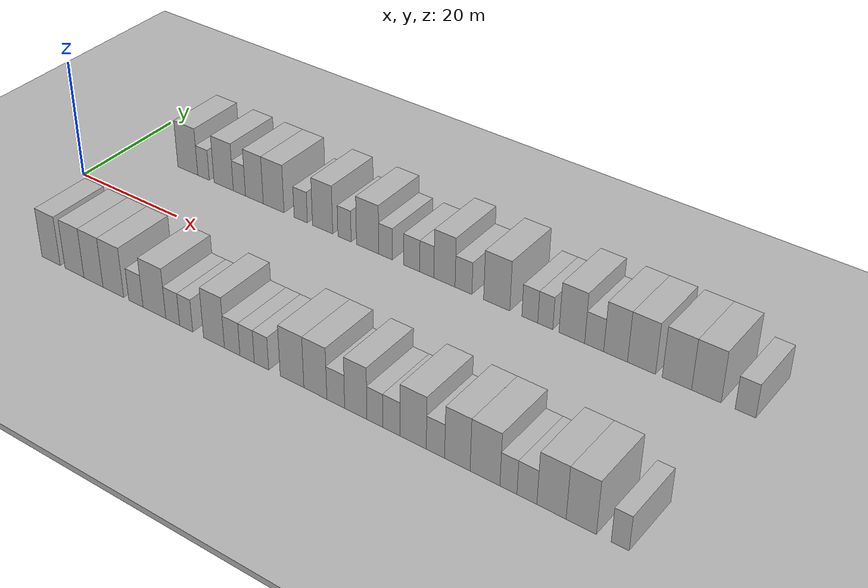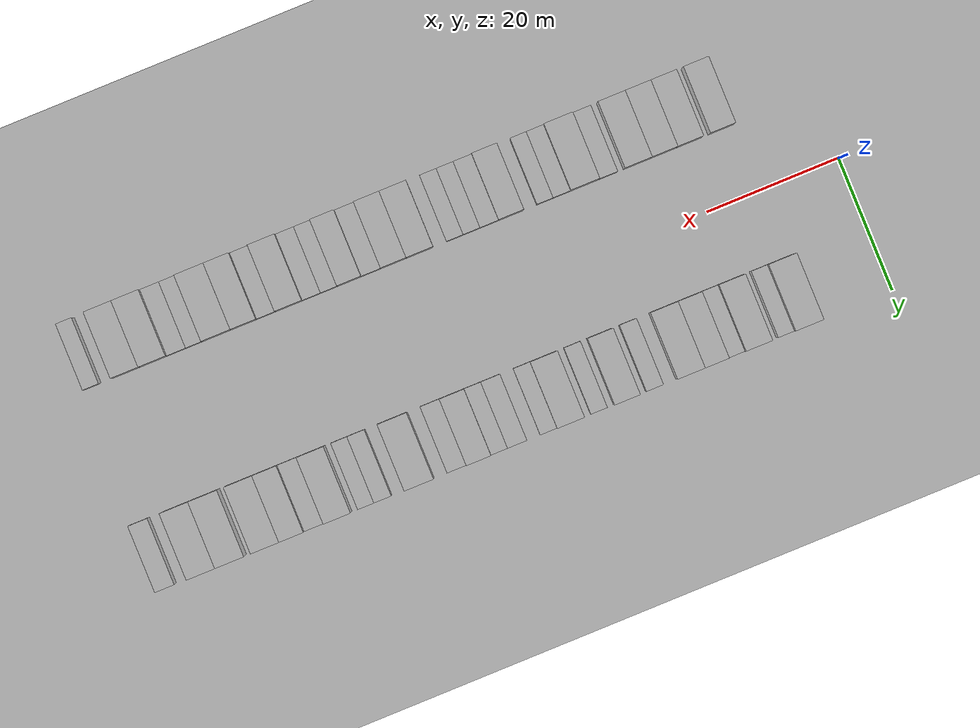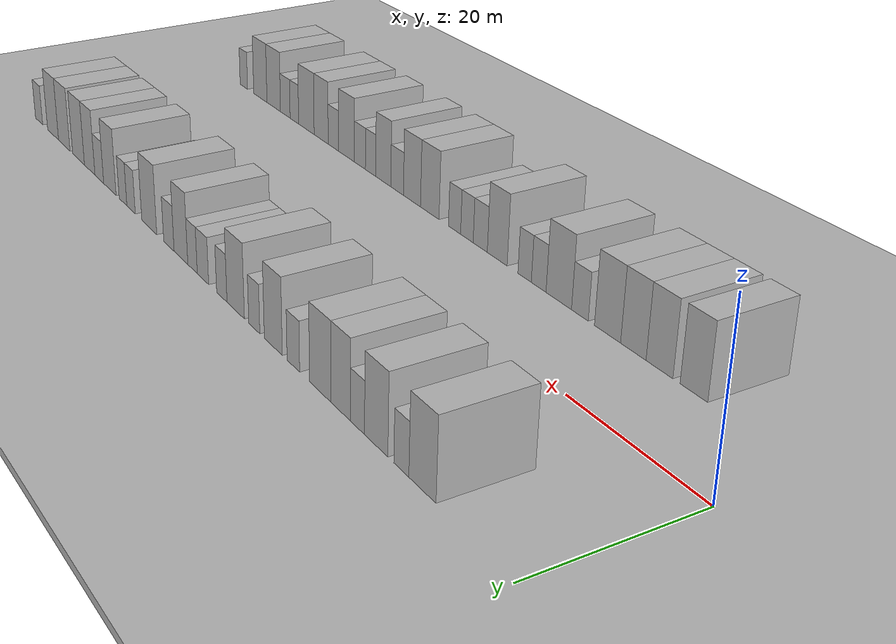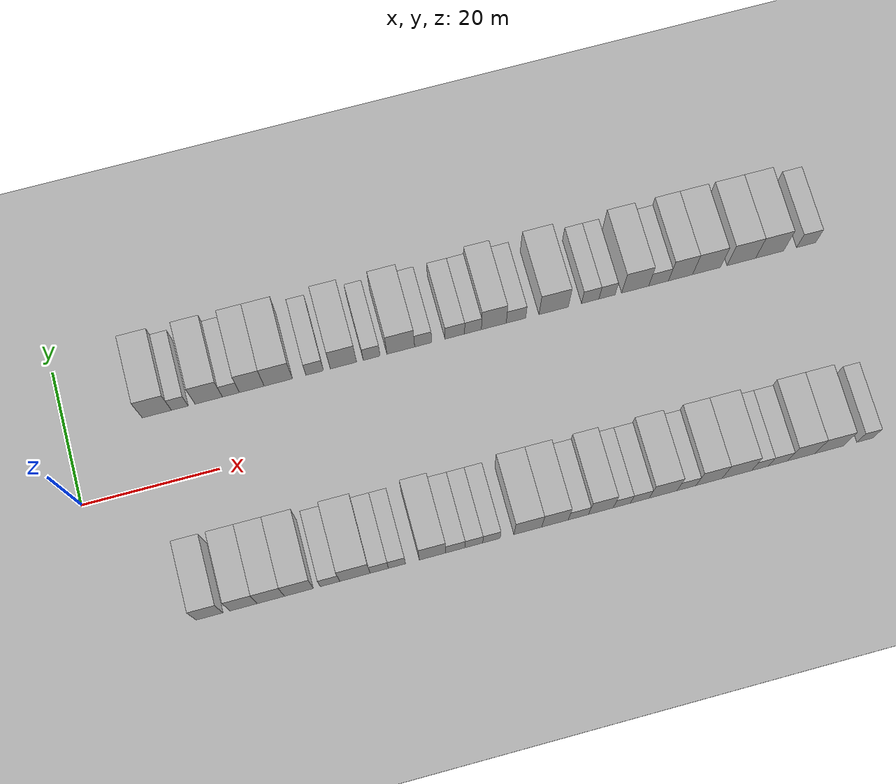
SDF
<sdf version="1.6">
 <world name="default">
  <include><name>ground_plane_1</name><uri>model://HANNAS_ground_plane</uri></include>
  <include>
   <name>ground_plane_2</name>
   <uri>model://HANNAS_ground_plane</uri>
   <pose>100 0 0  0 0 0</pose>
  </include>
  <model name="building_1">
   <static>1</static>
   <pose>13.1305 15.0000 0 0.000000 0.000000 1.570796</pose>
   <link name="link">
    <pose>0 0 4.50 0 0 0</pose>
    <collision name="collision"><geometry><box><size>10.0000 4.2610 9.0000</size></box></geometry></collision>
    <visual name="visual">
     <cast_shadows>0</cast_shadows>
     <geometry><box><size>10.0000 4.2610 9.0000</size></box></geometry>
     <material>
      <script>
       <uri>model://HANNAS_wall/materials/scripts</uri>
       <uri>model://HANNAS_wall/materials/textures</uri>
       <name>vrc/HANNAS_wall</name>
      </script>
     </material>
    </visual>
   </link>
  </model>
  <model name="building_2">
   <static>1</static>
   <pose>16.4832 15.0000 0 0.000000 0.000000 1.570796</pose>
   <link name="link">
    <pose>0 0 3.00 0 0 0</pose>
    <collision name="collision"><geometry><box><size>10.0000 2.4443 6.0000</size></box></geometry></collision>
    <visual name="visual">
     <cast_shadows>0</cast_shadows>
     <geometry><box><size>10.0000 2.4443 6.0000</size></box></geometry>
     <material>
      <script>
       <uri>model://HANNAS_wall/materials/scripts</uri>
       <uri>model://HANNAS_wall/materials/textures</uri>
       <name>vrc/HANNAS_wall</name>
      </script>
     </material>
    </visual>
   </link>
  </model>
  <model name="building_3">
   <static>1</static>
   <pose>20.7164 15.0000 0 0.000000 0.000000 1.570796</pose>
   <link name="link">
    <pose>0 0 4.50 0 0 0</pose>
    <collision name="collision"><geometry><box><size>10.0000 4.0220 9.0000</size></box></geometry></collision>
    <visual name="visual">
     <cast_shadows>0</cast_shadows>
     <geometry><box><size>10.0000 4.0220 9.0000</size></box></geometry>
     <material>
      <script>
       <uri>model://HANNAS_wall/materials/scripts</uri>
       <uri>model://HANNAS_wall/materials/textures</uri>
       <name>vrc/HANNAS_wall</name>
      </script>
     </material>
    </visual>
   </link>
  </model>
  <model name="building_4">
   <static>1</static>
   <pose>23.9780 15.0000 0 0.000000 0.000000 1.570796</pose>
   <link name="link">
    <pose>0 0 3.00 0 0 0</pose>
    <collision name="collision"><geometry><box><size>10.0000 2.5012 6.0000</size></box></geometry></collision>
    <visual name="visual">
     <cast_shadows>0</cast_shadows>
     <geometry><box><size>10.0000 2.5012 6.0000</size></box></geometry>
     <material>
      <script>
       <uri>model://HANNAS_wall/materials/scripts</uri>
       <uri>model://HANNAS_wall/materials/textures</uri>
       <name>vrc/HANNAS_wall</name>
      </script>
     </material>
    </visual>
   </link>
  </model>
  <model name="building_5">
   <static>1</static>
   <pose>27.0393 15.0000 0 0.000000 0.000000 1.570796</pose>
   <link name="link">
    <pose>0 0 4.50 0 0 0</pose>
    <collision name="collision"><geometry><box><size>10.0000 3.6214 9.0000</size></box></geometry></collision>
    <visual name="visual">
     <cast_shadows>0</cast_shadows>
     <geometry><box><size>10.0000 3.6214 9.0000</size></box></geometry>
     <material>
      <script>
       <uri>model://HANNAS_wall/materials/scripts</uri>
       <uri>model://HANNAS_wall/materials/textures</uri>
       <name>vrc/HANNAS_wall</name>
      </script>
     </material>
    </visual>
   </link>
  </model>
  <model name="building_6">
   <static>1</static>
   <pose>30.9318 15.0000 0 0.000000 0.000000 1.570796</pose>
   <link name="link">
    <pose>0 0 4.50 0 0 0</pose>
    <collision name="collision"><geometry><box><size>10.0000 4.1634 9.0000</size></box></geometry></collision>
    <visual name="visual">
     <cast_shadows>0</cast_shadows>
     <geometry><box><size>10.0000 4.1634 9.0000</size></box></geometry>
     <material>
      <script>
       <uri>model://HANNAS_wall/materials/scripts</uri>
       <uri>model://HANNAS_wall/materials/textures</uri>
       <name>vrc/HANNAS_wall</name>
      </script>
     </material>
    </visual>
   </link>
  </model>
  <model name="building_7">
   <static>1</static>
   <pose>36.3098 15.0000 0 0.000000 0.000000 1.570796</pose>
   <link name="link">
    <pose>0 0 3.00 0 0 0</pose>
    <collision name="collision"><geometry><box><size>10.0000 2.5927 6.0000</size></box></geometry></collision>
    <visual name="visual">
     <cast_shadows>0</cast_shadows>
     <geometry><box><size>10.0000 2.5927 6.0000</size></box></geometry>
     <material>
      <script>
       <uri>model://HANNAS_wall/materials/scripts</uri>
       <uri>model://HANNAS_wall/materials/textures</uri>
       <name>vrc/HANNAS_wall</name>
      </script>
     </material>
    </visual>
   </link>
  </model>
  <model name="building_8">
   <static>1</static>
   <pose>40.5476 15.0000 0 0.000000 0.000000 1.570796</pose>
   <link name="link">
    <pose>0 0 4.50 0 0 0</pose>
    <collision name="collision"><geometry><box><size>10.0000 3.8829 9.0000</size></box></geometry></collision>
    <visual name="visual">
     <cast_shadows>0</cast_shadows>
     <geometry><box><size>10.0000 3.8829 9.0000</size></box></geometry>
     <material>
      <script>
       <uri>model://HANNAS_wall/materials/scripts</uri>
       <uri>model://HANNAS_wall/materials/textures</uri>
       <name>vrc/HANNAS_wall</name>
      </script>
     </material>
    </visual>
   </link>
  </model>
  <model name="building_9">
   <static>1</static>
   <pose>44.7395 15.0000 0 0.000000 0.000000 1.570796</pose>
   <link name="link">
    <pose>0 0 3.00 0 0 0</pose>
    <collision name="collision"><geometry><box><size>10.0000 2.5008 6.0000</size></box></geometry></collision>
    <visual name="visual">
     <cast_shadows>0</cast_shadows>
     <geometry><box><size>10.0000 2.5008 6.0000</size></box></geometry>
     <material>
      <script>
       <uri>model://HANNAS_wall/materials/scripts</uri>
       <uri>model://HANNAS_wall/materials/textures</uri>
       <name>vrc/HANNAS_wall</name>
      </script>
     </material>
    </visual>
   </link>
  </model>
  <model name="building_10">
   <static>1</static>
   <pose>49.0521 15.0000 0 0.000000 0.000000 1.570796</pose>
   <link name="link">
    <pose>0 0 4.50 0 0 0</pose>
    <collision name="collision"><geometry><box><size>10.0000 4.1243 9.0000</size></box></geometry></collision>
    <visual name="visual">
     <cast_shadows>0</cast_shadows>
     <geometry><box><size>10.0000 4.1243 9.0000</size></box></geometry>
     <material>
      <script>
       <uri>model://HANNAS_wall/materials/scripts</uri>
       <uri>model://HANNAS_wall/materials/textures</uri>
       <name>vrc/HANNAS_wall</name>
      </script>
     </material>
    </visual>
   </link>
  </model>
  <model name="building_11">
   <static>1</static>
   <pose>52.3806 15.0000 0 0.000000 0.000000 1.570796</pose>
   <link name="link">
    <pose>0 0 3.00 0 0 0</pose>
    <collision name="collision"><geometry><box><size>10.0000 2.5327 6.0000</size></box></geometry></collision>
    <visual name="visual">
     <cast_shadows>0</cast_shadows>
     <geometry><box><size>10.0000 2.5327 6.0000</size></box></geometry>
     <material>
      <script>
       <uri>model://HANNAS_wall/materials/scripts</uri>
       <uri>model://HANNAS_wall/materials/textures</uri>
       <name>vrc/HANNAS_wall</name>
      </script>
     </material>
    </visual>
   </link>
  </model>
  <model name="building_12">
   <static>1</static>
   <pose>57.1099 15.0000 0 0.000000 0.000000 1.570796</pose>
   <link name="link">
    <pose>0 0 3.00 0 0 0</pose>
    <collision name="collision"><geometry><box><size>10.0000 2.9259 6.0000</size></box></geometry></collision>
    <visual name="visual">
     <cast_shadows>0</cast_shadows>
     <geometry><box><size>10.0000 2.9259 6.0000</size></box></geometry>
     <material>
      <script>
       <uri>model://HANNAS_wall/materials/scripts</uri>
       <uri>model://HANNAS_wall/materials/textures</uri>
       <name>vrc/HANNAS_wall</name>
      </script>
     </material>
    </visual>
   </link>
  </model>
  <model name="building_13">
   <static>1</static>
   <pose>59.8237 15.0000 0 0.000000 0.000000 1.570796</pose>
   <link name="link">
    <pose>0 0 3.00 0 0 0</pose>
    <collision name="collision"><geometry><box><size>10.0000 2.5016 6.0000</size></box></geometry></collision>
    <visual name="visual">
     <cast_shadows>0</cast_shadows>
     <geometry><box><size>10.0000 2.5016 6.0000</size></box></geometry>
     <material>
      <script>
       <uri>model://HANNAS_wall/materials/scripts</uri>
       <uri>model://HANNAS_wall/materials/textures</uri>
       <name>vrc/HANNAS_wall</name>
      </script>
     </material>
    </visual>
   </link>
  </model>
  <model name="building_14">
   <static>1</static>
   <pose>62.9377 15.0000 0 0.000000 0.000000 1.570796</pose>
   <link name="link">
    <pose>0 0 4.50 0 0 0</pose>
    <collision name="collision"><geometry><box><size>10.0000 3.7264 9.0000</size></box></geometry></collision>
    <visual name="visual">
     <cast_shadows>0</cast_shadows>
     <geometry><box><size>10.0000 3.7264 9.0000</size></box></geometry>
     <material>
      <script>
       <uri>model://HANNAS_wall/materials/scripts</uri>
       <uri>model://HANNAS_wall/materials/textures</uri>
       <name>vrc/HANNAS_wall</name>
      </script>
     </material>
    </visual>
   </link>
  </model>
  <model name="building_15">
   <static>1</static>
   <pose>66.2591 15.0000 0 0.000000 0.000000 1.570796</pose>
   <link name="link">
    <pose>0 0 3.00 0 0 0</pose>
    <collision name="collision"><geometry><box><size>10.0000 2.9166 6.0000</size></box></geometry></collision>
    <visual name="visual">
     <cast_shadows>0</cast_shadows>
     <geometry><box><size>10.0000 2.9166 6.0000</size></box></geometry>
     <material>
      <script>
       <uri>model://HANNAS_wall/materials/scripts</uri>
       <uri>model://HANNAS_wall/materials/textures</uri>
       <name>vrc/HANNAS_wall</name>
      </script>
     </material>
    </visual>
   </link>
  </model>
  <model name="building_16">
   <static>1</static>
   <pose>71.9295 15.0000 0 0.000000 0.000000 1.570796</pose>
   <link name="link">
    <pose>0 0 4.50 0 0 0</pose>
    <collision name="collision"><geometry><box><size>10.0000 4.4241 9.0000</size></box></geometry></collision>
    <visual name="visual">
     <cast_shadows>0</cast_shadows>
     <geometry><box><size>10.0000 4.4241 9.0000</size></box></geometry>
     <material>
      <script>
       <uri>model://HANNAS_wall/materials/scripts</uri>
       <uri>model://HANNAS_wall/materials/textures</uri>
       <name>vrc/HANNAS_wall</name>
      </script>
     </material>
    </visual>
   </link>
  </model>
  <model name="building_17">
   <static>1</static>
   <pose>77.4528 15.0000 0 0.000000 0.000000 1.570796</pose>
   <link name="link">
    <pose>0 0 3.00 0 0 0</pose>
    <collision name="collision"><geometry><box><size>10.0000 2.6226 6.0000</size></box></geometry></collision>
    <visual name="visual">
     <cast_shadows>0</cast_shadows>
     <geometry><box><size>10.0000 2.6226 6.0000</size></box></geometry>
     <material>
      <script>
       <uri>model://HANNAS_wall/materials/scripts</uri>
       <uri>model://HANNAS_wall/materials/textures</uri>
       <name>vrc/HANNAS_wall</name>
      </script>
     </material>
    </visual>
   </link>
  </model>
  <model name="building_18">
   <static>1</static>
   <pose>79.9871 15.0000 0 0.000000 0.000000 1.570796</pose>
   <link name="link">
    <pose>0 0 3.00 0 0 0</pose>
    <collision name="collision"><geometry><box><size>10.0000 2.4461 6.0000</size></box></geometry></collision>
    <visual name="visual">
     <cast_shadows>0</cast_shadows>
     <geometry><box><size>10.0000 2.4461 6.0000</size></box></geometry>
     <material>
      <script>
       <uri>model://HANNAS_wall/materials/scripts</uri>
       <uri>model://HANNAS_wall/materials/textures</uri>
       <name>vrc/HANNAS_wall</name>
      </script>
     </material>
    </visual>
   </link>
  </model>
  <model name="building_19">
   <static>1</static>
   <pose>84.2621 15.0000 0 0.000000 0.000000 1.570796</pose>
   <link name="link">
    <pose>0 0 4.50 0 0 0</pose>
    <collision name="collision"><geometry><box><size>10.0000 4.1038 9.0000</size></box></geometry></collision>
    <visual name="visual">
     <cast_shadows>0</cast_shadows>
     <geometry><box><size>10.0000 4.1038 9.0000</size></box></geometry>
     <material>
      <script>
       <uri>model://HANNAS_wall/materials/scripts</uri>
       <uri>model://HANNAS_wall/materials/textures</uri>
       <name>vrc/HANNAS_wall</name>
      </script>
     </material>
    </visual>
   </link>
  </model>
  <model name="building_20">
   <static>1</static>
   <pose>87.8092 15.0000 0 0.000000 0.000000 1.570796</pose>
   <link name="link">
    <pose>0 0 3.00 0 0 0</pose>
    <collision name="collision"><geometry><box><size>10.0000 2.9904 6.0000</size></box></geometry></collision>
    <visual name="visual">
     <cast_shadows>0</cast_shadows>
     <geometry><box><size>10.0000 2.9904 6.0000</size></box></geometry>
     <material>
      <script>
       <uri>model://HANNAS_wall/materials/scripts</uri>
       <uri>model://HANNAS_wall/materials/textures</uri>
       <name>vrc/HANNAS_wall</name>
      </script>
     </material>
    </visual>
   </link>
  </model>
  <model name="building_21">
   <static>1</static>
   <pose>91.1462 15.0000 0 0.000000 0.000000 1.570796</pose>
   <link name="link">
    <pose>0 0 4.50 0 0 0</pose>
    <collision name="collision"><geometry><box><size>10.0000 3.6837 9.0000</size></box></geometry></collision>
    <visual name="visual">
     <cast_shadows>0</cast_shadows>
     <geometry><box><size>10.0000 3.6837 9.0000</size></box></geometry>
     <material>
      <script>
       <uri>model://HANNAS_wall/materials/scripts</uri>
       <uri>model://HANNAS_wall/materials/textures</uri>
       <name>vrc/HANNAS_wall</name>
      </script>
     </material>
    </visual>
   </link>
  </model>
  <model name="building_22">
   <static>1</static>
   <pose>95.1196 15.0000 0 0.000000 0.000000 1.570796</pose>
   <link name="link">
    <pose>0 0 4.50 0 0 0</pose>
    <collision name="collision"><geometry><box><size>10.0000 4.2631 9.0000</size></box></geometry></collision>
    <visual name="visual">
     <cast_shadows>0</cast_shadows>
     <geometry><box><size>10.0000 4.2631 9.0000</size></box></geometry>
     <material>
      <script>
       <uri>model://HANNAS_wall/materials/scripts</uri>
       <uri>model://HANNAS_wall/materials/textures</uri>
       <name>vrc/HANNAS_wall</name>
      </script>
     </material>
    </visual>
   </link>
  </model>
  <model name="building_23">
   <static>1</static>
   <pose>100.4330 15.0000 0 0.000000 0.000000 1.570796</pose>
   <link name="link">
    <pose>0 0 4.50 0 0 0</pose>
    <collision name="collision"><geometry><box><size>10.0000 4.3636 9.0000</size></box></geometry></collision>
    <visual name="visual">
     <cast_shadows>0</cast_shadows>
     <geometry><box><size>10.0000 4.3636 9.0000</size></box></geometry>
     <material>
      <script>
       <uri>model://HANNAS_wall/materials/scripts</uri>
       <uri>model://HANNAS_wall/materials/textures</uri>
       <name>vrc/HANNAS_wall</name>
      </script>
     </material>
    </visual>
   </link>
  </model>
  <model name="building_24">
   <static>1</static>
   <pose>104.7611 15.0000 0 0.000000 0.000000 1.570796</pose>
   <link name="link">
    <pose>0 0 4.50 0 0 0</pose>
    <collision name="collision"><geometry><box><size>10.0000 4.2925 9.0000</size></box></geometry></collision>
    <visual name="visual">
     <cast_shadows>0</cast_shadows>
     <geometry><box><size>10.0000 4.2925 9.0000</size></box></geometry>
     <material>
      <script>
       <uri>model://HANNAS_wall/materials/scripts</uri>
       <uri>model://HANNAS_wall/materials/textures</uri>
       <name>vrc/HANNAS_wall</name>
      </script>
     </material>
    </visual>
   </link>
  </model>
  <model name="building_25">
   <static>1</static>
   <pose>110.3749 15.0000 0 0.000000 0.000000 1.570796</pose>
   <link name="link">
    <pose>0 0 3.00 0 0 0</pose>
    <collision name="collision"><geometry><box><size>10.0000 2.9353 6.0000</size></box></geometry></collision>
    <visual name="visual">
     <cast_shadows>0</cast_shadows>
     <geometry><box><size>10.0000 2.9353 6.0000</size></box></geometry>
     <material>
      <script>
       <uri>model://HANNAS_wall/materials/scripts</uri>
       <uri>model://HANNAS_wall/materials/textures</uri>
       <name>vrc/HANNAS_wall</name>
      </script>
     </material>
    </visual>
   </link>
  </model>
  <model name="building_52">
   <static>1</static>
   <pose>13.9039 -15.0000 0 0.000000 0.000000 1.570796</pose>
   <link name="link">
    <pose>0 0 4.50 0 0 0</pose>
    <collision name="collision"><geometry><box><size>10.0000 3.8078 9.0000</size></box></geometry></collision>
    <visual name="visual">
     <cast_shadows>0</cast_shadows>
     <geometry><box><size>10.0000 3.8078 9.0000</size></box></geometry>
     <material>
      <script>
       <uri>model://HANNAS_wall/materials/scripts</uri>
       <uri>model://HANNAS_wall/materials/textures</uri>
       <name>vrc/HANNAS_wall</name>
      </script>
     </material>
    </visual>
   </link>
  </model>
  <model name="building_53">
   <static>1</static>
   <pose>18.7515 -15.0000 0 0.000000 0.000000 1.570796</pose>
   <link name="link">
    <pose>0 0 4.50 0 0 0</pose>
    <collision name="collision"><geometry><box><size>10.0000 3.8874 9.0000</size></box></geometry></collision>
    <visual name="visual">
     <cast_shadows>0</cast_shadows>
     <geometry><box><size>10.0000 3.8874 9.0000</size></box></geometry>
     <material>
      <script>
       <uri>model://HANNAS_wall/materials/scripts</uri>
       <uri>model://HANNAS_wall/materials/textures</uri>
       <name>vrc/HANNAS_wall</name>
      </script>
     </material>
    </visual>
   </link>
  </model>
  <model name="building_54">
   <static>1</static>
   <pose>22.6195 -15.0000 0 0.000000 0.000000 1.570796</pose>
   <link name="link">
    <pose>0 0 4.50 0 0 0</pose>
    <collision name="collision"><geometry><box><size>10.0000 3.8486 9.0000</size></box></geometry></collision>
    <visual name="visual">
     <cast_shadows>0</cast_shadows>
     <geometry><box><size>10.0000 3.8486 9.0000</size></box></geometry>
     <material>
      <script>
       <uri>model://HANNAS_wall/materials/scripts</uri>
       <uri>model://HANNAS_wall/materials/textures</uri>
       <name>vrc/HANNAS_wall</name>
      </script>
     </material>
    </visual>
   </link>
  </model>
  <model name="building_55">
   <static>1</static>
   <pose>26.6039 -15.0000 0 0.000000 0.000000 1.570796</pose>
   <link name="link">
    <pose>0 0 4.50 0 0 0</pose>
    <collision name="collision"><geometry><box><size>10.0000 4.1202 9.0000</size></box></geometry></collision>
    <visual name="visual">
     <cast_shadows>0</cast_shadows>
     <geometry><box><size>10.0000 4.1202 9.0000</size></box></geometry>
     <material>
      <script>
       <uri>model://HANNAS_wall/materials/scripts</uri>
       <uri>model://HANNAS_wall/materials/textures</uri>
       <name>vrc/HANNAS_wall</name>
      </script>
     </material>
    </visual>
   </link>
  </model>
  <model name="building_56">
   <static>1</static>
   <pose>31.0491 -15.0000 0 0.000000 0.000000 1.570796</pose>
   <link name="link">
    <pose>0 0 3.00 0 0 0</pose>
    <collision name="collision"><geometry><box><size>10.0000 2.7703 6.0000</size></box></geometry></collision>
    <visual name="visual">
     <cast_shadows>0</cast_shadows>
     <geometry><box><size>10.0000 2.7703 6.0000</size></box></geometry>
     <material>
      <script>
       <uri>model://HANNAS_wall/materials/scripts</uri>
       <uri>model://HANNAS_wall/materials/textures</uri>
       <name>vrc/HANNAS_wall</name>
      </script>
     </material>
    </visual>
   </link>
  </model>
  <model name="building_57">
   <static>1</static>
   <pose>34.6202 -15.0000 0 0.000000 0.000000 1.570796</pose>
   <link name="link">
    <pose>0 0 4.50 0 0 0</pose>
    <collision name="collision"><geometry><box><size>10.0000 4.3719 9.0000</size></box></geometry></collision>
    <visual name="visual">
     <cast_shadows>0</cast_shadows>
     <geometry><box><size>10.0000 4.3719 9.0000</size></box></geometry>
     <material>
      <script>
       <uri>model://HANNAS_wall/materials/scripts</uri>
       <uri>model://HANNAS_wall/materials/textures</uri>
       <name>vrc/HANNAS_wall</name>
      </script>
     </material>
    </visual>
   </link>
  </model>
  <model name="building_58">
   <static>1</static>
   <pose>38.1164 -15.0000 0 0.000000 0.000000 1.570796</pose>
   <link name="link">
    <pose>0 0 3.00 0 0 0</pose>
    <collision name="collision"><geometry><box><size>10.0000 2.6204 6.0000</size></box></geometry></collision>
    <visual name="visual">
     <cast_shadows>0</cast_shadows>
     <geometry><box><size>10.0000 2.6204 6.0000</size></box></geometry>
     <material>
      <script>
       <uri>model://HANNAS_wall/materials/scripts</uri>
       <uri>model://HANNAS_wall/materials/textures</uri>
       <name>vrc/HANNAS_wall</name>
      </script>
     </material>
    </visual>
   </link>
  </model>
  <model name="building_59">
   <static>1</static>
   <pose>40.6482 -15.0000 0 0.000000 0.000000 1.570796</pose>
   <link name="link">
    <pose>0 0 3.00 0 0 0</pose>
    <collision name="collision"><geometry><box><size>10.0000 2.4431 6.0000</size></box></geometry></collision>
    <visual name="visual">
     <cast_shadows>0</cast_shadows>
     <geometry><box><size>10.0000 2.4431 6.0000</size></box></geometry>
     <material>
      <script>
       <uri>model://HANNAS_wall/materials/scripts</uri>
       <uri>model://HANNAS_wall/materials/textures</uri>
       <name>vrc/HANNAS_wall</name>
      </script>
     </material>
    </visual>
   </link>
  </model>
  <model name="building_60">
   <static>1</static>
   <pose>45.7719 -15.0000 0 0.000000 0.000000 1.570796</pose>
   <link name="link">
    <pose>0 0 4.50 0 0 0</pose>
    <collision name="collision"><geometry><box><size>10.0000 3.8043 9.0000</size></box></geometry></collision>
    <visual name="visual">
     <cast_shadows>0</cast_shadows>
     <geometry><box><size>10.0000 3.8043 9.0000</size></box></geometry>
     <material>
      <script>
       <uri>model://HANNAS_wall/materials/scripts</uri>
       <uri>model://HANNAS_wall/materials/textures</uri>
       <name>vrc/HANNAS_wall</name>
      </script>
     </material>
    </visual>
   </link>
  </model>
  <model name="building_61">
   <static>1</static>
   <pose>49.0729 -15.0000 0 0.000000 0.000000 1.570796</pose>
   <link name="link">
    <pose>0 0 3.00 0 0 0</pose>
    <collision name="collision"><geometry><box><size>10.0000 2.7978 6.0000</size></box></geometry></collision>
    <visual name="visual">
     <cast_shadows>0</cast_shadows>
     <geometry><box><size>10.0000 2.7978 6.0000</size></box></geometry>
     <material>
      <script>
       <uri>model://HANNAS_wall/materials/scripts</uri>
       <uri>model://HANNAS_wall/materials/textures</uri>
       <name>vrc/HANNAS_wall</name>
      </script>
     </material>
    </visual>
   </link>
  </model>
  <model name="building_62">
   <static>1</static>
   <pose>51.7469 -15.0000 0 0.000000 0.000000 1.570796</pose>
   <link name="link">
    <pose>0 0 3.00 0 0 0</pose>
    <collision name="collision"><geometry><box><size>10.0000 2.5502 6.0000</size></box></geometry></collision>
    <visual name="visual">
     <cast_shadows>0</cast_shadows>
     <geometry><box><size>10.0000 2.5502 6.0000</size></box></geometry>
     <material>
      <script>
       <uri>model://HANNAS_wall/materials/scripts</uri>
       <uri>model://HANNAS_wall/materials/textures</uri>
       <name>vrc/HANNAS_wall</name>
      </script>
     </material>
    </visual>
   </link>
  </model>
  <model name="building_63">
   <static>1</static>
   <pose>54.2846 -15.0000 0 0.000000 0.000000 1.570796</pose>
   <link name="link">
    <pose>0 0 3.00 0 0 0</pose>
    <collision name="collision"><geometry><box><size>10.0000 2.5253 6.0000</size></box></geometry></collision>
    <visual name="visual">
     <cast_shadows>0</cast_shadows>
     <geometry><box><size>10.0000 2.5253 6.0000</size></box></geometry>
     <material>
      <script>
       <uri>model://HANNAS_wall/materials/scripts</uri>
       <uri>model://HANNAS_wall/materials/textures</uri>
       <name>vrc/HANNAS_wall</name>
      </script>
     </material>
    </visual>
   </link>
  </model>
  <model name="building_64">
   <static>1</static>
   <pose>59.5753 -15.0000 0 0.000000 0.000000 1.570796</pose>
   <link name="link">
    <pose>0 0 4.50 0 0 0</pose>
    <collision name="collision"><geometry><box><size>10.0000 4.0559 9.0000</size></box></geometry></collision>
    <visual name="visual">
     <cast_shadows>0</cast_shadows>
     <geometry><box><size>10.0000 4.0559 9.0000</size></box></geometry>
     <material>
      <script>
       <uri>model://HANNAS_wall/materials/scripts</uri>
       <uri>model://HANNAS_wall/materials/textures</uri>
       <name>vrc/HANNAS_wall</name>
      </script>
     </material>
    </visual>
   </link>
  </model>
  <model name="building_65">
   <static>1</static>
   <pose>63.5303 -15.0000 0 0.000000 0.000000 1.570796</pose>
   <link name="link">
    <pose>0 0 4.50 0 0 0</pose>
    <collision name="collision"><geometry><box><size>10.0000 3.8541 9.0000</size></box></geometry></collision>
    <visual name="visual">
     <cast_shadows>0</cast_shadows>
     <geometry><box><size>10.0000 3.8541 9.0000</size></box></geometry>
     <material>
      <script>
       <uri>model://HANNAS_wall/materials/scripts</uri>
       <uri>model://HANNAS_wall/materials/textures</uri>
       <name>vrc/HANNAS_wall</name>
      </script>
     </material>
    </visual>
   </link>
  </model>
  <model name="building_66">
   <static>1</static>
   <pose>66.9332 -15.0000 0 0.000000 0.000000 1.570796</pose>
   <link name="link">
    <pose>0 0 3.00 0 0 0</pose>
    <collision name="collision"><geometry><box><size>10.0000 2.9517 6.0000</size></box></geometry></collision>
    <visual name="visual">
     <cast_shadows>0</cast_shadows>
     <geometry><box><size>10.0000 2.9517 6.0000</size></box></geometry>
     <material>
      <script>
       <uri>model://HANNAS_wall/materials/scripts</uri>
       <uri>model://HANNAS_wall/materials/textures</uri>
       <name>vrc/HANNAS_wall</name>
      </script>
     </material>
    </visual>
   </link>
  </model>
  <model name="building_67">
   <static>1</static>
   <pose>70.2221 -15.0000 0 0.000000 0.000000 1.570796</pose>
   <link name="link">
    <pose>0 0 4.50 0 0 0</pose>
    <collision name="collision"><geometry><box><size>10.0000 3.6262 9.0000</size></box></geometry></collision>
    <visual name="visual">
     <cast_shadows>0</cast_shadows>
     <geometry><box><size>10.0000 3.6262 9.0000</size></box></geometry>
     <material>
      <script>
       <uri>model://HANNAS_wall/materials/scripts</uri>
       <uri>model://HANNAS_wall/materials/textures</uri>
       <name>vrc/HANNAS_wall</name>
      </script>
     </material>
    </visual>
   </link>
  </model>
  <model name="building_68">
   <static>1</static>
   <pose>73.2996 -15.0000 0 0.000000 0.000000 1.570796</pose>
   <link name="link">
    <pose>0 0 3.00 0 0 0</pose>
    <collision name="collision"><geometry><box><size>10.0000 2.5288 6.0000</size></box></geometry></collision>
    <visual name="visual">
     <cast_shadows>0</cast_shadows>
     <geometry><box><size>10.0000 2.5288 6.0000</size></box></geometry>
     <material>
      <script>
       <uri>model://HANNAS_wall/materials/scripts</uri>
       <uri>model://HANNAS_wall/materials/textures</uri>
       <name>vrc/HANNAS_wall</name>
      </script>
     </material>
    </visual>
   </link>
  </model>
  <model name="building_69">
   <static>1</static>
   <pose>75.9419 -15.0000 0 0.000000 0.000000 1.570796</pose>
   <link name="link">
    <pose>0 0 3.00 0 0 0</pose>
    <collision name="collision"><geometry><box><size>10.0000 2.7558 6.0000</size></box></geometry></collision>
    <visual name="visual">
     <cast_shadows>0</cast_shadows>
     <geometry><box><size>10.0000 2.7558 6.0000</size></box></geometry>
     <material>
      <script>
       <uri>model://HANNAS_wall/materials/scripts</uri>
       <uri>model://HANNAS_wall/materials/textures</uri>
       <name>vrc/HANNAS_wall</name>
      </script>
     </material>
    </visual>
   </link>
  </model>
  <model name="building_70">
   <static>1</static>
   <pose>79.3626 -15.0000 0 0.000000 0.000000 1.570796</pose>
   <link name="link">
    <pose>0 0 4.50 0 0 0</pose>
    <collision name="collision"><geometry><box><size>10.0000 4.0856 9.0000</size></box></geometry></collision>
    <visual name="visual">
     <cast_shadows>0</cast_shadows>
     <geometry><box><size>10.0000 4.0856 9.0000</size></box></geometry>
     <material>
      <script>
       <uri>model://HANNAS_wall/materials/scripts</uri>
       <uri>model://HANNAS_wall/materials/textures</uri>
       <name>vrc/HANNAS_wall</name>
      </script>
     </material>
    </visual>
   </link>
  </model>
  <model name="building_71">
   <static>1</static>
   <pose>82.8084 -15.0000 0 0.000000 0.000000 1.570796</pose>
   <link name="link">
    <pose>0 0 3.00 0 0 0</pose>
    <collision name="collision"><geometry><box><size>10.0000 2.8059 6.0000</size></box></geometry></collision>
    <visual name="visual">
     <cast_shadows>0</cast_shadows>
     <geometry><box><size>10.0000 2.8059 6.0000</size></box></geometry>
     <material>
      <script>
       <uri>model://HANNAS_wall/materials/scripts</uri>
       <uri>model://HANNAS_wall/materials/textures</uri>
       <name>vrc/HANNAS_wall</name>
      </script>
     </material>
    </visual>
   </link>
  </model>
  <model name="building_72">
   <static>1</static>
   <pose>86.1302 -15.0000 0 0.000000 0.000000 1.570796</pose>
   <link name="link">
    <pose>0 0 4.50 0 0 0</pose>
    <collision name="collision"><geometry><box><size>10.0000 3.8378 9.0000</size></box></geometry></collision>
    <visual name="visual">
     <cast_shadows>0</cast_shadows>
     <geometry><box><size>10.0000 3.8378 9.0000</size></box></geometry>
     <material>
      <script>
       <uri>model://HANNAS_wall/materials/scripts</uri>
       <uri>model://HANNAS_wall/materials/textures</uri>
       <name>vrc/HANNAS_wall</name>
      </script>
     </material>
    </visual>
   </link>
  </model>
  <model name="building_73">
   <static>1</static>
   <pose>90.2491 -15.0000 0 0.000000 0.000000 1.570796</pose>
   <link name="link">
    <pose>0 0 4.50 0 0 0</pose>
    <collision name="collision"><geometry><box><size>10.0000 4.3998 9.0000</size></box></geometry></collision>
    <visual name="visual">
     <cast_shadows>0</cast_shadows>
     <geometry><box><size>10.0000 4.3998 9.0000</size></box></geometry>
     <material>
      <script>
       <uri>model://HANNAS_wall/materials/scripts</uri>
       <uri>model://HANNAS_wall/materials/textures</uri>
       <name>vrc/HANNAS_wall</name>
      </script>
     </material>
    </visual>
   </link>
  </model>
  <model name="building_74">
   <static>1</static>
   <pose>93.6875 -15.0000 0 0.000000 0.000000 1.570796</pose>
   <link name="link">
    <pose>0 0 3.00 0 0 0</pose>
    <collision name="collision"><geometry><box><size>10.0000 2.4770 6.0000</size></box></geometry></collision>
    <visual name="visual">
     <cast_shadows>0</cast_shadows>
     <geometry><box><size>10.0000 2.4770 6.0000</size></box></geometry>
     <material>
      <script>
       <uri>model://HANNAS_wall/materials/scripts</uri>
       <uri>model://HANNAS_wall/materials/textures</uri>
       <name>vrc/HANNAS_wall</name>
      </script>
     </material>
    </visual>
   </link>
  </model>
  <model name="building_75">
   <static>1</static>
   <pose>96.3542 -15.0000 0 0.000000 0.000000 1.570796</pose>
   <link name="link">
    <pose>0 0 3.00 0 0 0</pose>
    <collision name="collision"><geometry><box><size>10.0000 2.8563 6.0000</size></box></geometry></collision>
    <visual name="visual">
     <cast_shadows>0</cast_shadows>
     <geometry><box><size>10.0000 2.8563 6.0000</size></box></geometry>
     <material>
      <script>
       <uri>model://HANNAS_wall/materials/scripts</uri>
       <uri>model://HANNAS_wall/materials/textures</uri>
       <name>vrc/HANNAS_wall</name>
      </script>
     </material>
    </visual>
   </link>
  </model>
  <model name="building_76">
   <static>1</static>
   <pose>99.8422 -15.0000 0 0.000000 0.000000 1.570796</pose>
   <link name="link">
    <pose>0 0 4.50 0 0 0</pose>
    <collision name="collision"><geometry><box><size>10.0000 4.1197 9.0000</size></box></geometry></collision>
    <visual name="visual">
     <cast_shadows>0</cast_shadows>
     <geometry><box><size>10.0000 4.1197 9.0000</size></box></geometry>
     <material>
      <script>
       <uri>model://HANNAS_wall/materials/scripts</uri>
       <uri>model://HANNAS_wall/materials/textures</uri>
       <name>vrc/HANNAS_wall</name>
      </script>
     </material>
    </visual>
   </link>
  </model>
  <model name="building_77">
   <static>1</static>
   <pose>103.9867 -15.0000 0 0.000000 0.000000 1.570796</pose>
   <link name="link">
    <pose>0 0 4.50 0 0 0</pose>
    <collision name="collision"><geometry><box><size>10.0000 4.1692 9.0000</size></box></geometry></collision>
    <visual name="visual">
     <cast_shadows>0</cast_shadows>
     <geometry><box><size>10.0000 4.1692 9.0000</size></box></geometry>
     <material>
      <script>
       <uri>model://HANNAS_wall/materials/scripts</uri>
       <uri>model://HANNAS_wall/materials/textures</uri>
       <name>vrc/HANNAS_wall</name>
      </script>
     </material>
    </visual>
   </link>
  </model>
  <model name="building_78">
   <static>1</static>
   <pose>109.2821 -15.0000 0 0.000000 0.000000 1.570796</pose>
   <link name="link">
    <pose>0 0 3.00 0 0 0</pose>
    <collision name="collision"><geometry><box><size>10.0000 2.4218 6.0000</size></box></geometry></collision>
    <visual name="visual">
     <cast_shadows>0</cast_shadows>
     <geometry><box><size>10.0000 2.4218 6.0000</size></box></geometry>
     <material>
      <script>
       <uri>model://HANNAS_wall/materials/scripts</uri>
       <uri>model://HANNAS_wall/materials/textures</uri>
       <name>vrc/HANNAS_wall</name>
      </script>
     </material>
    </visual>
   </link>
  </model>
 </world>
</sdf>
